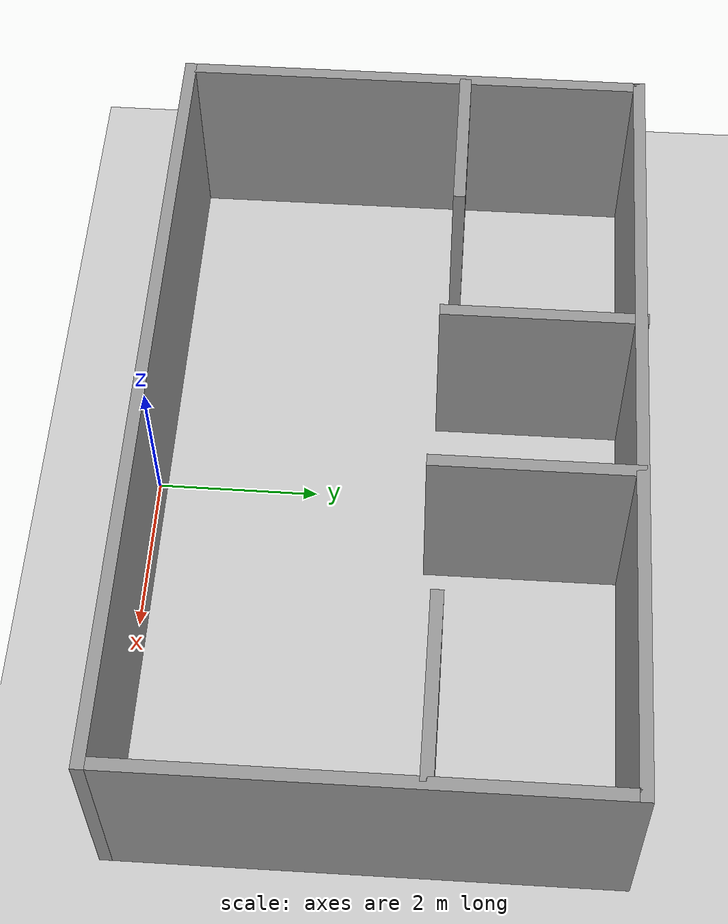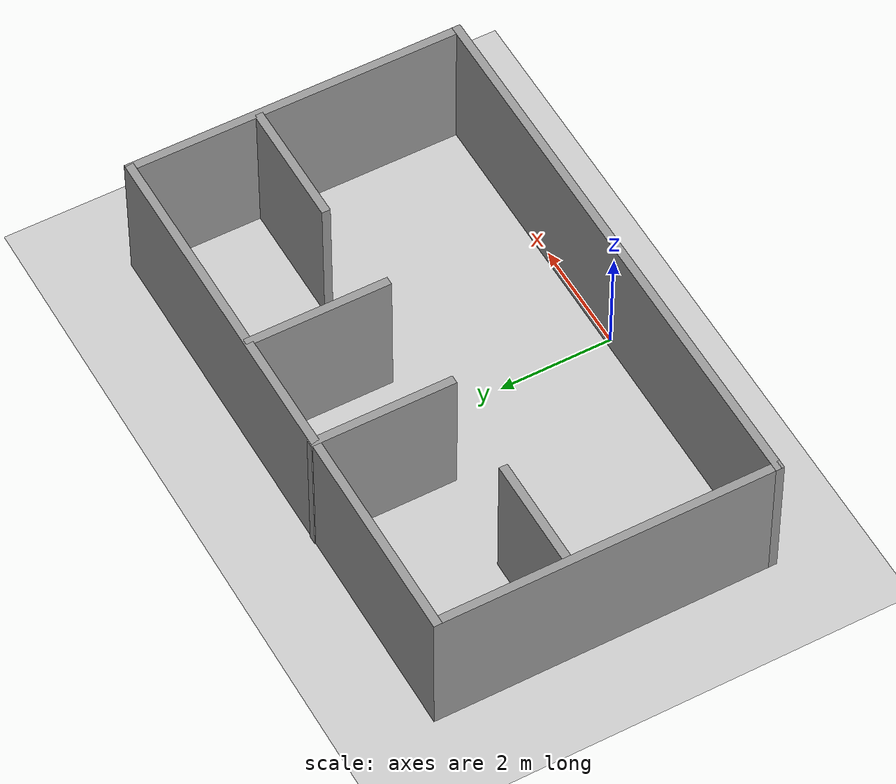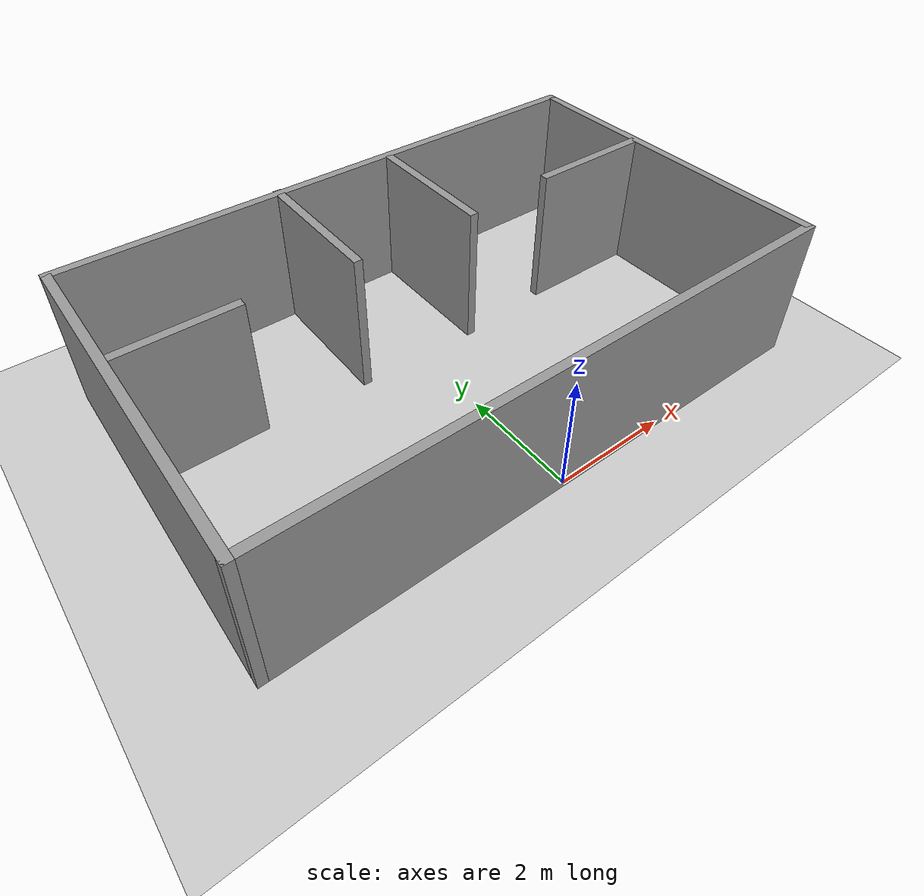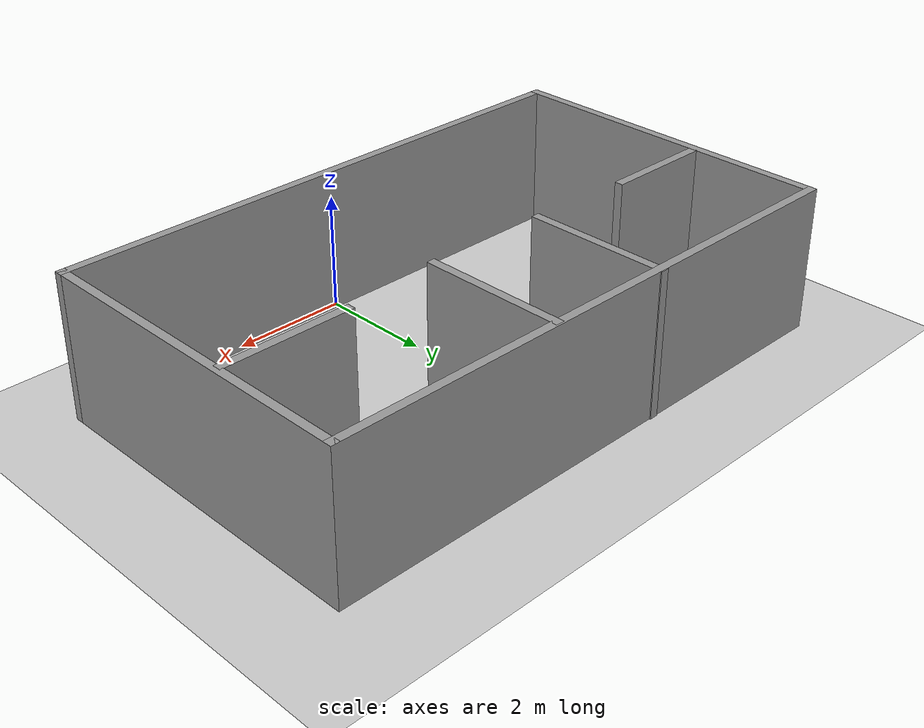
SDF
<sdf version="1.7">
 <world name="default">
  <light name="sun" type="directional">
   <pose>0 0 10 0 -0 0</pose>
   <diffuse>0.8 0.8 0.8 1</diffuse>
   <specular>0.2 0.2 0.2 1</specular>
   <attenuation>
    <range>1000</range>
    <constant>0.9</constant>
    <linear>0.01</linear>
    <quadratic>0.001</quadratic>
   </attenuation>
   <direction>-0.5 0.1 -0.9</direction>
   <spot><inner_angle>0</inner_angle><outer_angle>0</outer_angle><falloff>0</falloff></spot>
  </light>
  <model name="ground_plane">
   <static>1</static>
   <link name="link">
    <collision name="collision">
     <geometry><plane><normal>0 0 1</normal><size>100 100</size></plane></geometry>
     <surface>
      <contact><collide_bitmask>65535</collide_bitmask></contact>
      <friction><ode><mu>100</mu><mu2>50</mu2></ode></friction>
     </surface>
    </collision>
    <visual name="visual">
     <cast_shadows>0</cast_shadows>
     <geometry><plane><normal>0 0 1</normal><size>100 100</size></plane></geometry>
     <material>
      <script><uri>file://media/materials/scripts/gazebo.material</uri><name>Gazebo/Grey</name></script>
     </material>
    </visual>
   </link>
  </model>
  <gravity>0 0 -9.8</gravity>
  <magnetic_field>6e-06 2.3e-05 -4.2e-05</magnetic_field>
  <atmosphere type="adiabatic"/>
  <physics type="ode">
   <max_step_size>0.001</max_step_size>
   <real_time_factor>1</real_time_factor>
   <real_time_update_rate>1000</real_time_update_rate>
  </physics>
  <scene><ambient>0.4 0.4 0.4 1</ambient><background>0.7 0.7 0.7 1</background><shadows>1</shadows></scene>
  <spherical_coordinates>
   <surface_model>EARTH_WGS84</surface_model>
   <latitude_deg>0</latitude_deg>
   <longitude_deg>0</longitude_deg>
   <elevation>0</elevation>
   <heading_deg>0</heading_deg>
  </spherical_coordinates>
  <model name="final_">
   <pose>0.024714 2.95119 0 0 -0 0</pose>
   <link name="Wall_0">
    <collision name="Wall_0_Collision">
     <geometry><box><size>6 0.15 2.5</size></box></geometry>
     <pose>0 0 1.25 0 -0 0</pose>
    </collision>
    <visual name="Wall_0_Visual">
     <pose>0 0 1.25 0 -0 0</pose>
     <geometry><box><size>6 0.15 2.5</size></box></geometry>
     <material>
      <script><uri>file://media/materials/scripts/gazebo.material</uri><name>Gazebo/Grey</name></script>
      <ambient>1 1 1 1</ambient>
     </material>
     <meta><layer>0</layer></meta>
    </visual>
    <pose>-4.925 -0.008573 0 0 -0 1.5708</pose>
   </link>
   <link name="Wall_1">
    <collision name="Wall_1_Collision">
     <geometry><box><size>10 0.15 2.5</size></box></geometry>
     <pose>0 0 1.25 0 -0 0</pose>
    </collision>
    <visual name="Wall_1_Visual">
     <pose>0 0 1.25 0 -0 0</pose>
     <geometry><box><size>10 0.15 2.5</size></box></geometry>
     <material>
      <script><uri>file://media/materials/scripts/gazebo.material</uri><name>Gazebo/Grey</name></script>
      <ambient>1 1 1 1</ambient>
     </material>
     <meta><layer>0</layer></meta>
    </visual>
    <pose>0 2.91643 0 0 -0 0</pose>
   </link>
   <link name="Wall_13">
    <collision name="Wall_13_Collision">
     <geometry><box><size>2.25 0.15 2.5</size></box></geometry>
     <pose>0 0 1.25 0 -0 0</pose>
    </collision>
    <visual name="Wall_13_Visual">
     <pose>0 0 1.25 0 -0 0</pose>
     <geometry><box><size>2.25 0.15 2.5</size></box></geometry>
     <material>
      <script><uri>file://media/materials/scripts/gazebo.material</uri><name>Gazebo/Grey</name></script>
      <ambient>1 1 1 1</ambient>
     </material>
     <meta><layer>0</layer></meta>
    </visual>
    <pose>3.7864 0.666773 0 0 -0 3.14159</pose>
   </link>
   <link name="Wall_17">
    <collision name="Wall_17_Collision">
     <geometry><box><size>2.5 0.15 2.5</size></box></geometry>
     <pose>0 0 1.25 0 -0 0</pose>
    </collision>
    <visual name="Wall_17_Visual">
     <pose>0 0 1.25 0 -0 0</pose>
     <geometry><box><size>2.5 0.15 2.5</size></box></geometry>
     <material>
      <script><uri>file://media/materials/scripts/gazebo.material</uri><name>Gazebo/Grey</name></script>
      <ambient>1 1 1 1</ambient>
     </material>
     <meta><layer>0</layer></meta>
    </visual>
    <pose>-1.1627 1.75857 0 0 -0 -1.5708</pose>
   </link>
   <link name="Wall_2">
    <collision name="Wall_2_Collision">
     <geometry><box><size>6 0.15 2.5</size></box></geometry>
     <pose>0 0 1.25 0 -0 0</pose>
    </collision>
    <visual name="Wall_2_Visual">
     <pose>0 0 1.25 0 -0 0</pose>
     <geometry><box><size>6 0.15 2.5</size></box></geometry>
     <material>
      <script><uri>file://media/materials/scripts/gazebo.material</uri><name>Gazebo/Grey</name></script>
      <ambient>1 1 1 1</ambient>
     </material>
     <meta><layer>0</layer></meta>
    </visual>
    <pose>4.925 -0.008573 0 0 -0 -1.5708</pose>
   </link>
   <link name="Wall_22">
    <collision name="Wall_22_Collision">
     <geometry><box><size>2.5 0.15 2.5</size></box></geometry>
     <pose>0 0 1.25 0 -0 0</pose>
    </collision>
    <visual name="Wall_22_Visual">
     <pose>0 0 1.25 0 -0 0</pose>
     <geometry><box><size>2.5 0.15 2.5</size></box></geometry>
     <material>
      <script><uri>file://media/materials/scripts/gazebo.material</uri><name>Gazebo/Grey</name></script>
      <ambient>1 1 1 1</ambient>
     </material>
     <meta><layer>0</layer></meta>
    </visual>
    <pose>0.988447 1.71231 0 0 -0 -1.5708</pose>
   </link>
   <link name="Wall_3">
    <collision name="Wall_3_Collision">
     <geometry><box><size>10 0.15 2.5</size></box></geometry>
     <pose>0 0 1.25 0 -0 0</pose>
    </collision>
    <visual name="Wall_3_Visual">
     <pose>0 0 1.25 0 -0 0</pose>
     <geometry><box><size>10 0.15 2.5</size></box></geometry>
     <material>
      <script><uri>file://media/materials/scripts/gazebo.material</uri><name>Gazebo/Grey</name></script>
      <ambient>1 1 1 1</ambient>
     </material>
     <meta><layer>0</layer></meta>
    </visual>
    <pose>0 -2.93357 0 0 -0 3.14159</pose>
   </link>
   <link name="Wall_7">
    <collision name="Wall_7_Collision">
     <geometry><box><size>2 0.15 2.5</size></box></geometry>
     <pose>0 0 1.25 0 -0 0</pose>
    </collision>
    <visual name="Wall_7_Visual">
     <pose>0 0 1.25 0 -0 0</pose>
     <geometry><box><size>2 0.15 2.5</size></box></geometry>
     <material>
      <script><uri>file://media/materials/scripts/gazebo.material</uri><name>Gazebo/Grey</name></script>
      <ambient>1 1 1 1</ambient>
     </material>
     <meta><layer>0</layer></meta>
    </visual>
    <pose>-3.9386 0.666773 0 0 -0 0</pose>
   </link>
   <static>1</static>
  </model>
 </world>
</sdf>
